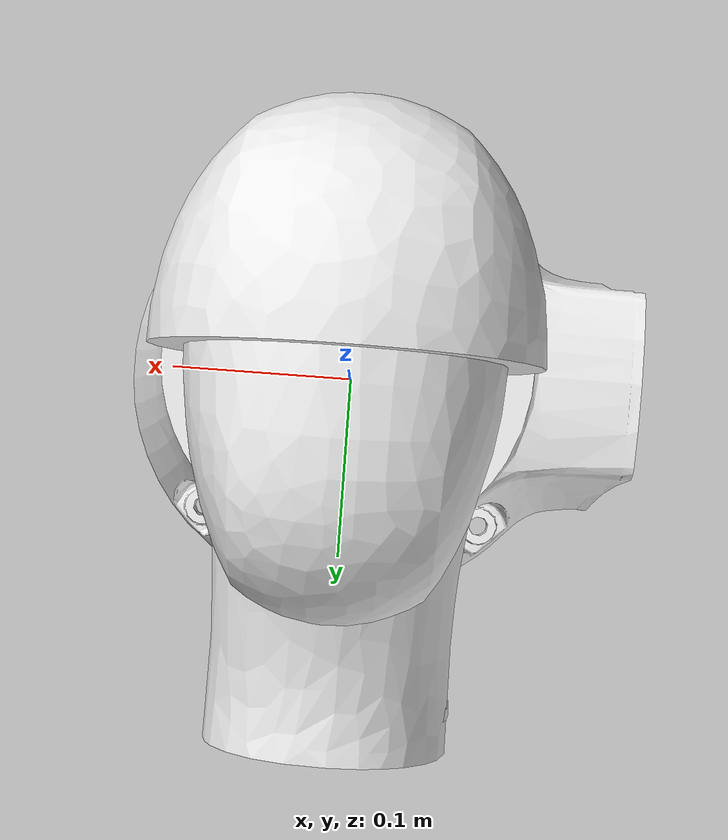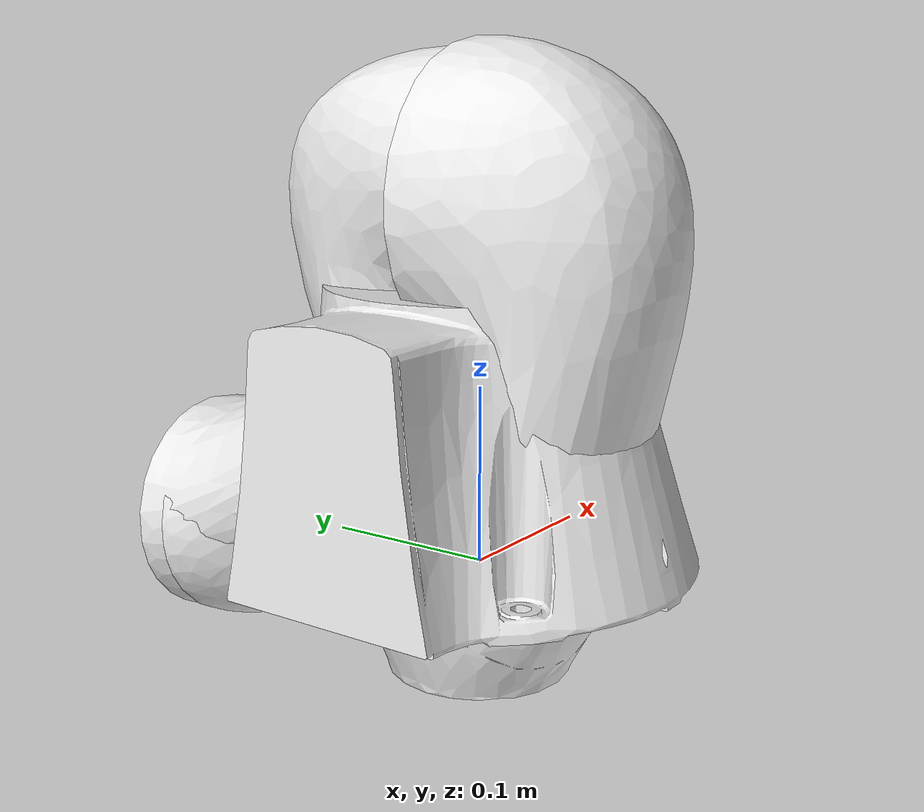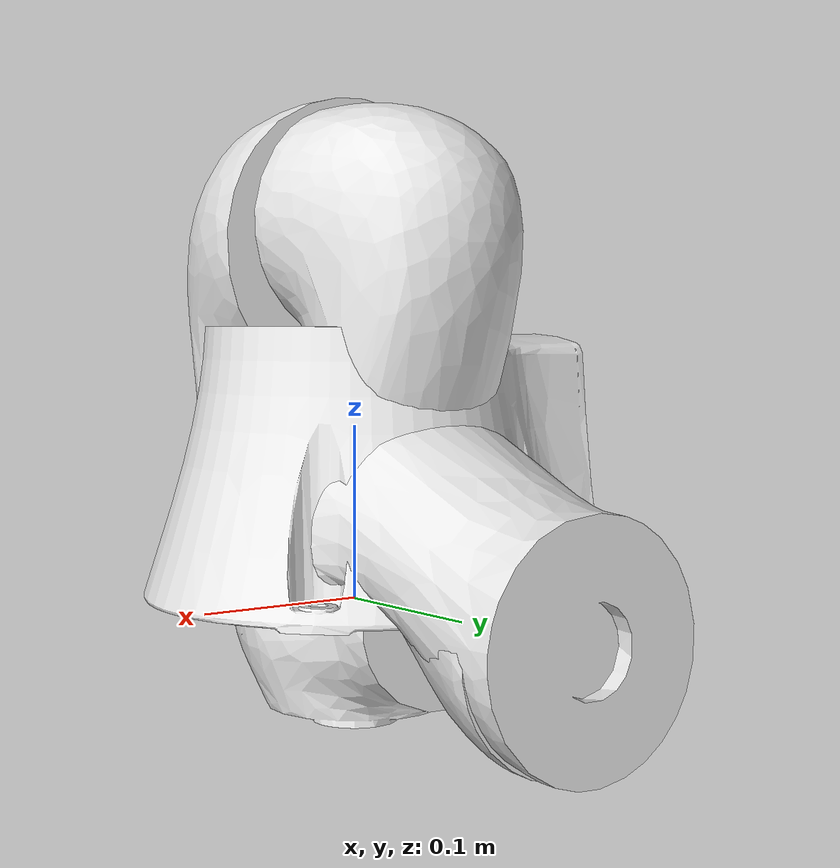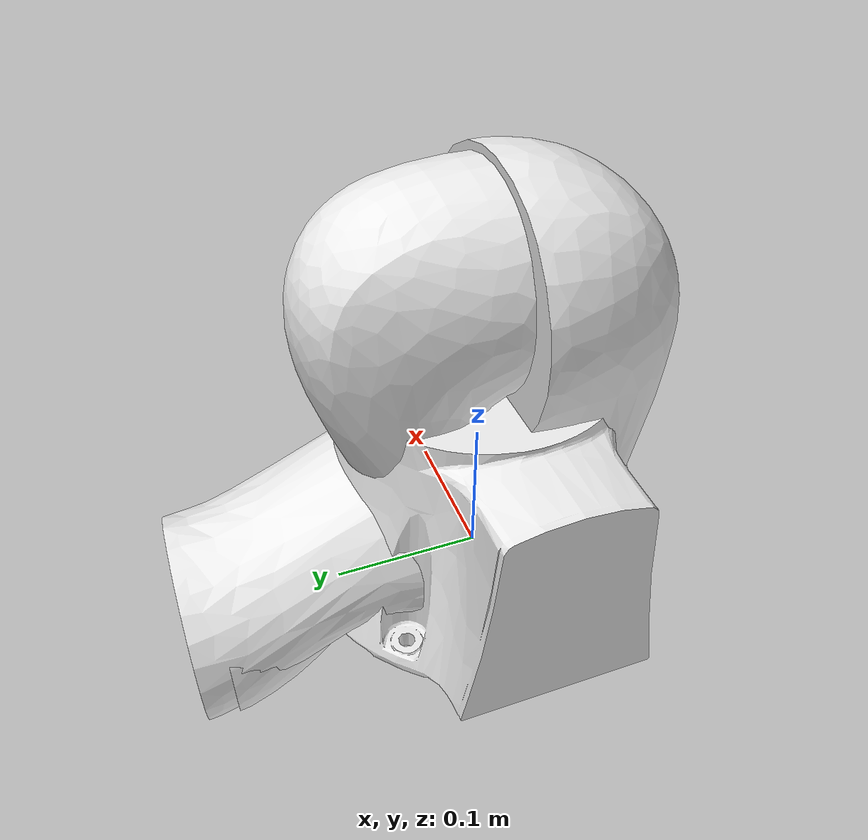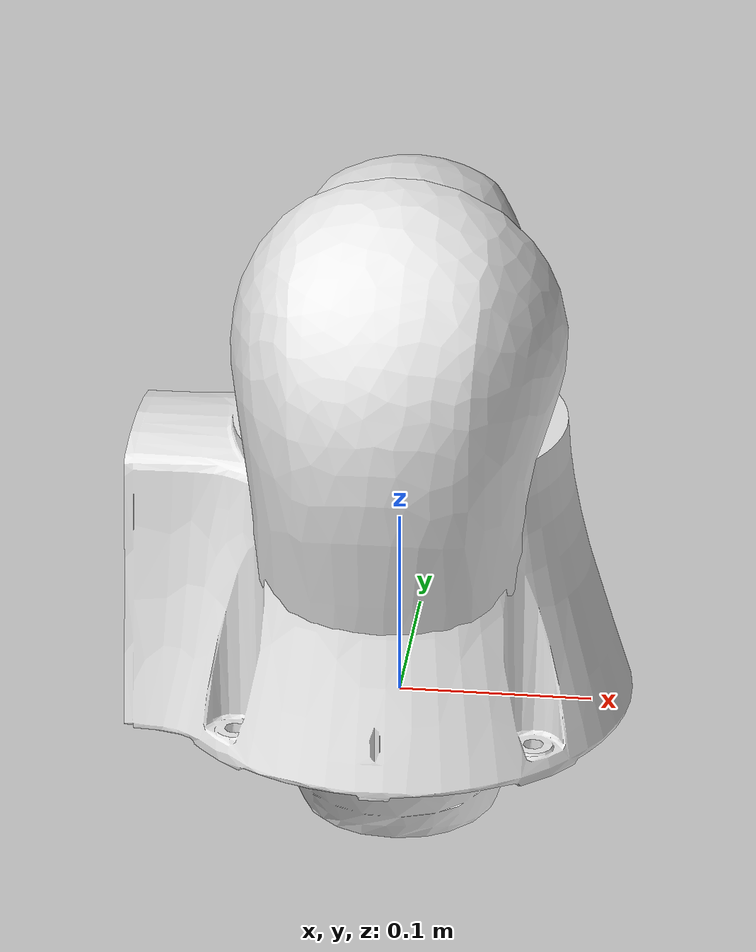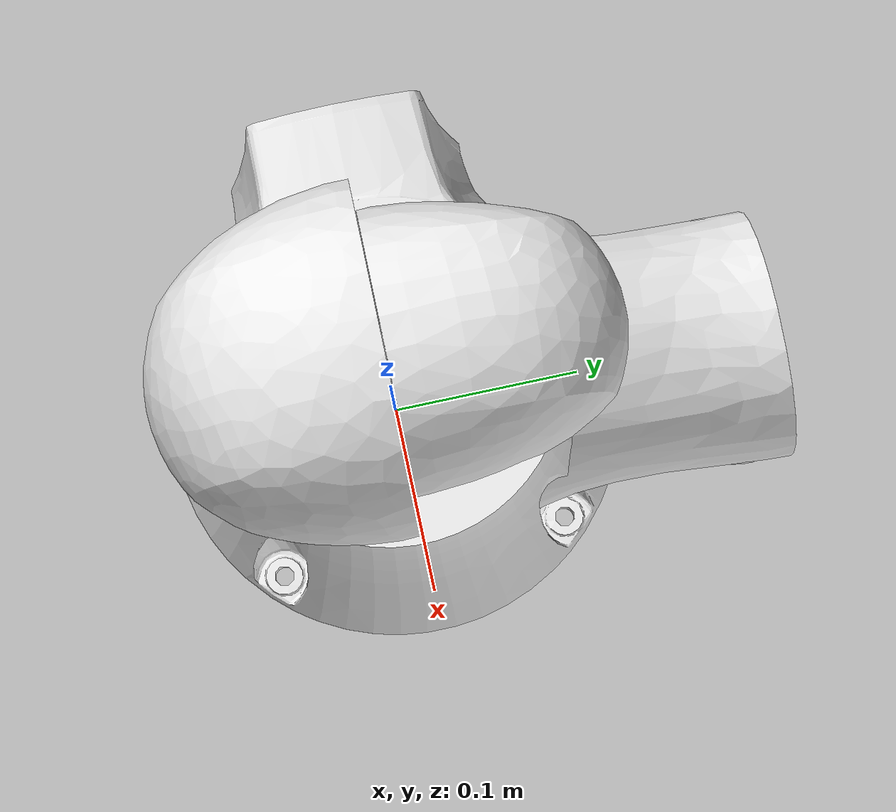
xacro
<?xml version="1.0"?>

<!-- top level -->
<robot name="med14" xmlns:xacro="http://www.ros.org/wiki/xacro">

    <!-- include the lbr med macro -->
    <xacro:include filename="med14_description.urdf.xacro"/>

    <!-- fix to world -->
    <link name="world"/>

    <!-- med -->
    <xacro:med14 parent="world" robot_name="lbr" sim="true"/>
</robot>

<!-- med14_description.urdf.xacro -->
<robot xmlns:xacro="http://www.ros.org/wiki/xacro">

    <!-- some constants -->
    <xacro:property name="PI" value="3.1415926535897931"/>
    <xacro:property name="joint_damping" value="10.0"/>
    <xacro:property name="joint_friction" value="0.1"/>
    <xacro:property name="max_effort" value="300"/>
    <xacro:property name="max_velocity" value="10"/>

    <!-- includes -->
    <xacro:include filename="materials.urdf.xacro"/>

    <!-- robot as extracted via https://github.com/syuntoku14/fusion2urdf -->
    <xacro:macro name="med14" params="parent:=^|world robot_name:=^|lbr sim:=^|true">

        <!--joint between {parent} and link_0-->
        <joint name="${parent}_${robot_name}_joint" type="fixed">
            <parent link="${parent}"/>
            <child link="${robot_name}_link_0"/>
        </joint>

        <link name="${robot_name}_link_0">
            <inertial>
            <origin rpy="0 0 0" xyz="-0.0018642104260720833 -9.120393625716289e-09 0.07751683665104403"/>
            <mass value="8.146350"/>
            <inertia ixx="0.044603" ixy="-0.000000" ixz="-0.000788" iyy="0.045465" iyz="0.000000" izz="0.061903"/>
            </inertial>
            <visual>
            <origin rpy="0 0 0" xyz="0 0 0"/>
            <geometry>
                <mesh filename="meshes/med14/visual/link_0.stl"/>
            </geometry>
            <material name="white"/>
            </visual>
            <collision>
            <origin rpy="0 0 0" xyz="0 0 0"/>
            <geometry>
                <mesh filename="meshes/med14/collision/link_0.stl"/>
            </geometry>
            </collision>
        </link>

        <joint name="${robot_name}_joint_0" type="revolute">
            <origin rpy="0 0 0" xyz="0.0 0.0 0.147"/>
            <parent link="${robot_name}_link_0"/>
            <child link="${robot_name}_link_1"/>
            <axis xyz="0.0 0.0 1.0"/>
            <limit effort="${max_effort}" lower="${-170 * PI / 180}" upper="${170 * PI / 180}" velocity="${max_velocity}"/>
            <dynamics damping="${joint_damping}" friction="${joint_friction}"/>
        </joint>

        <link name="${robot_name}_link_1">
            <inertial>
            <origin rpy="0 0 0" xyz="9.307232415315581e-08 -0.033795431550791004 0.13240370669453896"/>
            <mass value="5.591386"/>
            <inertia ixx="0.044885" ixy="-0.000000" ixz="-0.000000" iyy="0.045283" iyz="0.006703" izz="0.016775"/>
            </inertial>
            <visual>
            <origin rpy="0 0 0" xyz="-0.0 -0.0 -0.147"/>
            <geometry>
                <mesh filename="meshes/med14/visual/link_1.stl"/>
            </geometry>
            <material name="white"/>
            </visual>
            <collision>
            <origin rpy="0 0 0" xyz="-0.0 -0.0 -0.147"/>
            <geometry>
                <mesh filename="meshes/med14/collision/link_1.stl"/>
            </geometry>
            </collision>
        </link>

        <joint name="${robot_name}_joint_1" type="revolute">
            <origin rpy="0 0 0" xyz="0.0 -0.01 0.2125"/>
            <parent link="${robot_name}_link_1"/>
            <child link="${robot_name}_link_2"/>
            <axis xyz="0.0 1.0 0.0"/>
            <limit effort="${max_effort}" lower="${-120 * PI / 180}" upper="${120 * PI / 180}" velocity="${max_velocity}"/>
            <dynamics damping="${joint_damping}" friction="${joint_friction}"/>
        </joint>

        <link name="${robot_name}_link_2">
            <inertial>
            <origin rpy="0 0 0" xyz="0.0001358226533474577 0.0475476440926152 0.07632205850106144"/>
            <mass value="6.013539"/>
            <inertia ixx="0.058332" ixy="-0.000035" ixz="0.000059" iyy="0.057063" iyz="0.010606" izz="0.017466"/>
            </inertial>
            <visual>
            <origin rpy="0 0 0" xyz="-0.0 0.01 -0.3595"/>
            <geometry>
                <mesh filename="meshes/med14/visual/link_2.stl"/>
            </geometry>
            <material name="white"/>
            </visual>
            <collision>
            <origin rpy="0 0 0" xyz="-0.0 0.01 -0.3595"/>
            <geometry>
                <mesh filename="meshes/med14/collision/link_2.stl"/>
            </geometry>
            </collision>
        </link>

        <joint name="${robot_name}_joint_2" type="revolute">
            <origin rpy="0 0 0" xyz="-0.0 0.01 0.228"/>
            <parent link="${robot_name}_link_2"/>
            <child link="${robot_name}_link_3"/>
            <axis xyz="0.0 0.0 1.0"/>
            <limit effort="${max_effort}" lower="${-170 * PI / 180}" upper="${170 * PI / 180}" velocity="${max_velocity}"/>
            <dynamics damping="${joint_damping}" friction="${joint_friction}"/>
        </joint>

        <link name="${robot_name}_link_3">
            <inertial>
            <origin rpy="0 0 0" xyz="5.689213978259012e-08 0.03491265072974692 0.12310820658934007"/>
            <mass value="3.658768"/>
            <inertia ixx="0.022960" ixy="-0.000000" ixz="0.000000" iyy="0.021913" iyz="-0.004065" izz="0.008140"/>
            </inertial>
            <visual>
            <origin rpy="0 0 0" xyz="0.0 -0.0 -0.5875"/>
            <geometry>
                <mesh filename="meshes/med14/visual/link_3.stl"/>
            </geometry>
            <material name="white"/>
            </visual>
            <collision>
            <origin rpy="0 0 0" xyz="0.0 -0.0 -0.5875"/>
            <geometry>
                <mesh filename="meshes/med14/collision/link_3.stl"/>
            </geometry>
            </collision>
        </link>

        <joint name="${robot_name}_joint_3" type="revolute">
            <origin rpy="0 0 0" xyz="0.0 0.0105 0.192"/>
            <parent link="${robot_name}_link_3"/>
            <child link="${robot_name}_link_4"/>
            <axis xyz="0.0 -1.0 0.0"/>
            <limit effort="${max_effort}" lower="${-120 * PI / 180}" upper="${120 * PI / 180}" velocity="${max_velocity}"/>
            <dynamics damping="${joint_damping}" friction="${joint_friction}"/>
        </joint>

        <link name="${robot_name}_link_4">
            <inertial>
            <origin rpy="0 0 0" xyz="-3.025185496951432e-08 -0.03979329512420171 0.08694364647762443"/>
            <mass value="4.358282"/>
            <inertia ixx="0.034259" ixy="-0.000000" ixz="-0.000000" iyy="0.032514" iyz="-0.006365" izz="0.010447"/>
            </inertial>
            <visual>
            <origin rpy="0 0 0" xyz="0.0 -0.0105 -0.7795"/>
            <geometry>
                <mesh filename="meshes/med14/visual/link_4.stl"/>
            </geometry>
            <material name="white"/>
            </visual>
            <collision>
            <origin rpy="0 0 0" xyz="0.0 -0.0105 -0.7795"/>
            <geometry>
                <mesh filename="meshes/med14/collision/link_4.stl"/>
            </geometry>
            </collision>
        </link>

        <joint name="${robot_name}_joint_4" type="revolute">
            <origin rpy="0 0 0" xyz="0.0 -0.0105 0.2075"/>
            <parent link="${robot_name}_link_4"/>
            <child link="${robot_name}_link_5"/>
            <axis xyz="0.0 0.0 1.0"/>
            <limit effort="${max_effort}" lower="${-170 * PI / 180}" upper="${170 * PI / 180}" velocity="${max_velocity}"/>
            <dynamics damping="${joint_damping}" friction="${joint_friction}"/>
        </joint>

        <link name="${robot_name}_link_5">
            <inertial>
            <origin rpy="0 0 0" xyz="3.8871741664391765e-08 -0.029824284088761824 0.07626701716135809"/>
            <mass value="1.652994"/>
            <inertia ixx="0.009172" ixy="0.000000" ixz="-0.000000" iyy="0.007714" iyz="0.003033" izz="0.004159"/>
            </inertial>
            <visual>
            <origin rpy="0 0 0" xyz="-0.0 0.0 -0.987"/>
            <geometry>
                <mesh filename="meshes/med14/visual/link_5.stl"/>
            </geometry>
            <material name="white"/>
            </visual>
            <collision>
            <origin rpy="0 0 0" xyz="-0.0 0.0 -0.987"/>
            <geometry>
                <mesh filename="meshes/med14/collision/link_5.stl"/>
            </geometry>
            </collision>
        </link>

        <joint name="${robot_name}_joint_5" type="revolute">
            <origin rpy="0 0 0" xyz="0.0 -0.0707 0.1925"/>
            <parent link="${robot_name}_link_5"/>
            <child link="${robot_name}_link_6"/>
            <axis xyz="0.0 1.0 0.0"/>
            <limit effort="${max_effort}" lower="${-120 * PI / 180}" upper="${120 * PI / 180}" velocity="${max_velocity}"/>
            <dynamics damping="${joint_damping}" friction="${joint_friction}"/>
        </joint>

        <link name="${robot_name}_link_6">
            <inertial>
            <origin rpy="0 0 0" xyz="-7.073221484902805e-07 0.07101990943401978 0.004952526180380223"/>
            <mass value="2.598208"/>
            <inertia ixx="0.007640" ixy="-0.000000" ixz="0.000000" iyy="0.007355" iyz="0.000336" izz="0.005004"/>
            </inertial>
            <visual>
            <origin rpy="0 0 0" xyz="-0.0 0.0707 -1.1795"/>
            <geometry>
                <mesh filename="meshes/med14/visual/link_6.stl"/>
            </geometry>
            <material name="white"/>
            </visual>
            <collision>
            <origin rpy="0 0 0" xyz="-0.0 0.0707 -1.1795"/>
            <geometry>
                <mesh filename="meshes/med14/collision/link_6.stl"/>
            </geometry>
            </collision>
        </link>

        <joint name="${robot_name}_joint_6" type="revolute">
            <origin rpy="0 0 0" xyz="0.0 0.0707 0.091"/>
            <parent link="${robot_name}_link_6"/>
            <child link="${robot_name}_link_7"/>
            <axis xyz="0.0 0.0 1.0"/>
            <limit effort="${max_effort}" lower="${-175 * PI / 180}" upper="${175 * PI / 180}" velocity="${max_velocity}"/>
            <dynamics damping="${joint_damping}" friction="${joint_friction}"/>
        </joint>

        <link name="${robot_name}_link_7">
            <inertial>
            <origin rpy="0 0 0" xyz="3.121827460016089e-06 -1.635815563460264e-06 0.0137822955218736"/>
            <mass value="0.280472"/>
            <inertia ixx="0.000185" ixy="0.000000" ixz="-0.000000" iyy="0.000185" iyz="0.000000" izz="0.000323"/>
            </inertial>
            <visual>
            <origin rpy="0 0 0" xyz="-0.0 -0.0 -1.2705"/>
            <geometry>
                <mesh filename="meshes/med14/visual/link_7.stl"/>
            </geometry>
            <material name="silver"/>
            </visual>
            <collision>
            <origin rpy="0 0 0" xyz="-0.0 -0.0 -1.2705"/>
            <geometry>
                <mesh filename="meshes/med14/collision/link_7.stl"/>
            </geometry>
            </collision>
        </link>

        <joint name="${robot_name}_joint_ee" type="fixed">
            <parent link="${robot_name}_link_7"/>
            <child link="${robot_name}_link_ee"/>
            <origin xyz="0 0 0.035" rpy="0 0 0"/>
        </joint>

        <link name="${robot_name}_link_ee">
        </link>

    </xacro:macro>
</robot>
